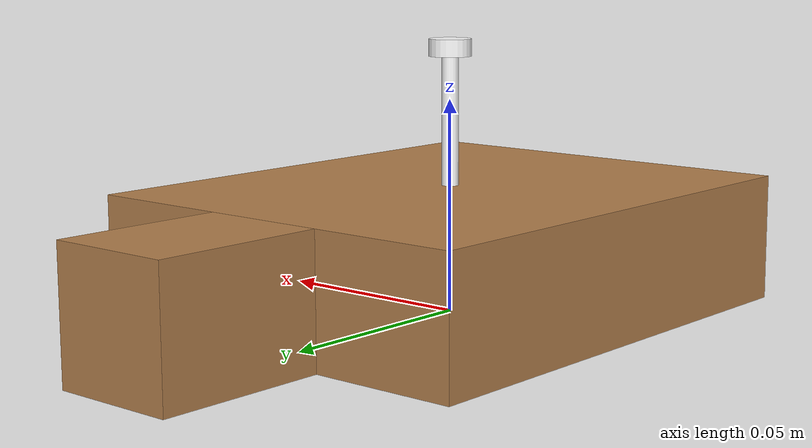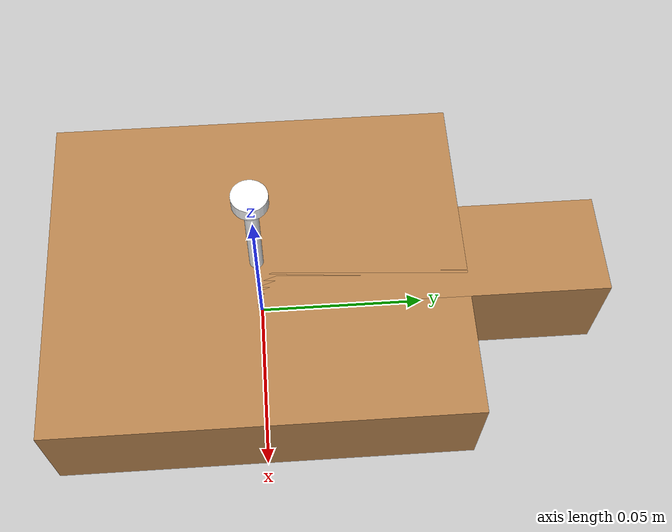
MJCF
<?xml version="1.0" encoding="utf-8"?>
<!-- from https://github.com/vikashplus/mj_envs/tree/master/mj_envs/hand_manipulation_suite/assets -->
<!-- Information about door can be found in this paper: https://arxiv.org/pdf/1709.10087.pdf -->

<mujoco model="particle">
  <asset>
    <texture file="../textures/light-wood.png" type="cube" name="light-wood" />
    <texture file="../textures/dark-wood.png" type="cube" name="dark-wood" />
    <texture file="../textures/brass-ambra.png" type="cube" name="metal" />
    <material name="MatMetal" texture="metal" specular="1" shininess="0.3" rgba="0.9 0.9 0.9 1" />
    <material name="MatDarkWood" texture="dark-wood" texrepeat="3 3" specular="0.4" shininess="0.1" />
    <material name="MatLightWood" texture="light-wood" texrepeat="3 3" specular="0.4" shininess="0.1" />
  </asset>

    <worldbody>
      <body>
        <body name="object">
          <site name="origin" pos="0 0 0" rgba="0 0 0 0" size="0.005"/>
          <body name="body" pos="0 0 0.015">
            <geom pos="0.0 0.0 0.0" size="0.05 0.06 0.015" type="box" friction="1 1 1" group="0" name="body" material="MatLightWood"/>
            <geom pos="0 0.05 0.0" size="0.015 0.05 0.015" type="box" friction="1 1 1" group="0" name="handle" material="MatLightWood"/>
            <inertial pos="0. 0 0" mass="0.2"  diaginertia="0.0001 0.0001 0.0001" />

          <body name="nail" pos="0 0 0.015">
            <inertial pos="0. 0 0" mass="0.01"  diaginertia="0.0001 0.0001 0.0001" />
            <site name="nailing_point" pos="0 0 0" rgba="0 0 0 0" size="0.005"/>
            <geom size="0.002 0.015" pos="0 0 0.015" type="cylinder" rgba="1 1 1 1" group="0" material="MatMetal"/>
            <geom size="0.005 0.002" pos="0 0 0.032" type="cylinder" rgba="1 1 1 1" group="0" material="MatMetal"/>
            <joint name="joint_nail"
                  type="slide" axis="0 0 1"
                  limited="true" range="-0.3 0" frictionloss="1.0" damping="0.1" armature="0.1"
                  />
          </body>

          </body>
        </body>

        <site name="bottom_site" pos="0 0 -0.0207" rgba="0 0 0 0" size="0.005"/>
        <site name="top_site" pos="0 0 0.007" rgba="0 0 0 0" size="0.005"/>
        <site name="horizontal_radius_site" pos="0 0 0" rgba="0 0 0 0" size="0.003"/>
      </body>

    </worldbody>
</mujoco>
